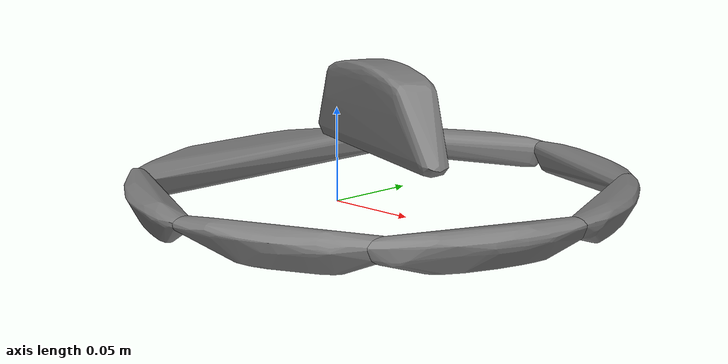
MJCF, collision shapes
<mujoco model="ycb_028_skillet_lid">
  <compiler meshdir="meshes" texturedir="meshes" angle="radian"/>
  <default>
    <default class="visual"><geom contype="0" conaffinity="0" group="2" density="0"/></default>
    <default class="collision"><geom group="3"/></default>
  </default>
  <asset>
    <texture name="ycb_028_skillet_lid_tex" type="2d" file="ycb_028_skillet_lid_texture.png"/>
    <material name="ycb_028_skillet_lid_mat" texture="ycb_028_skillet_lid_tex" specular="0.2" shininess="0.3"/>
    <mesh name="ycb_028_skillet_lid_visual" file="ycb_028_skillet_lid_visual.obj"/>
    <mesh name="ycb_028_skillet_lid_hull0" file="ycb_028_skillet_lid_hull0.obj"/>
    <mesh name="ycb_028_skillet_lid_hull1" file="ycb_028_skillet_lid_hull1.obj"/>
    <mesh name="ycb_028_skillet_lid_hull2" file="ycb_028_skillet_lid_hull2.obj"/>
    <mesh name="ycb_028_skillet_lid_hull3" file="ycb_028_skillet_lid_hull3.obj"/>
    <mesh name="ycb_028_skillet_lid_hull4" file="ycb_028_skillet_lid_hull4.obj"/>
    <mesh name="ycb_028_skillet_lid_hull5" file="ycb_028_skillet_lid_hull5.obj"/>
    <mesh name="ycb_028_skillet_lid_hull6" file="ycb_028_skillet_lid_hull6.obj"/>
    <mesh name="ycb_028_skillet_lid_hull7" file="ycb_028_skillet_lid_hull7.obj"/>
  </asset>
  <worldbody>
    <body name="object" pos="0 0 0">
      <freejoint name="object_free"/>
      <geom type="mesh" mesh="ycb_028_skillet_lid_visual" material="ycb_028_skillet_lid_mat" class="visual"/>
      <geom type="mesh" mesh="ycb_028_skillet_lid_hull0" class="collision"/>
      <geom type="mesh" mesh="ycb_028_skillet_lid_hull1" class="collision"/>
      <geom type="mesh" mesh="ycb_028_skillet_lid_hull2" class="collision"/>
      <geom type="mesh" mesh="ycb_028_skillet_lid_hull3" class="collision"/>
      <geom type="mesh" mesh="ycb_028_skillet_lid_hull4" class="collision"/>
      <geom type="mesh" mesh="ycb_028_skillet_lid_hull5" class="collision"/>
      <geom type="mesh" mesh="ycb_028_skillet_lid_hull6" class="collision"/>
      <geom type="mesh" mesh="ycb_028_skillet_lid_hull7" class="collision"/>
    </body>
  </worldbody>
</mujoco>
